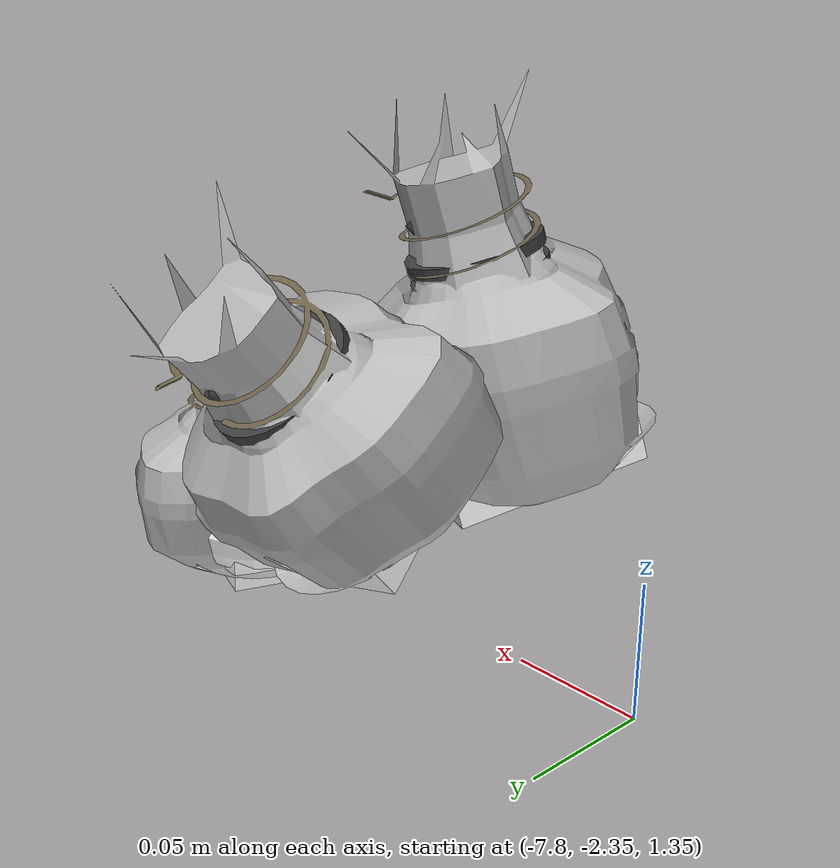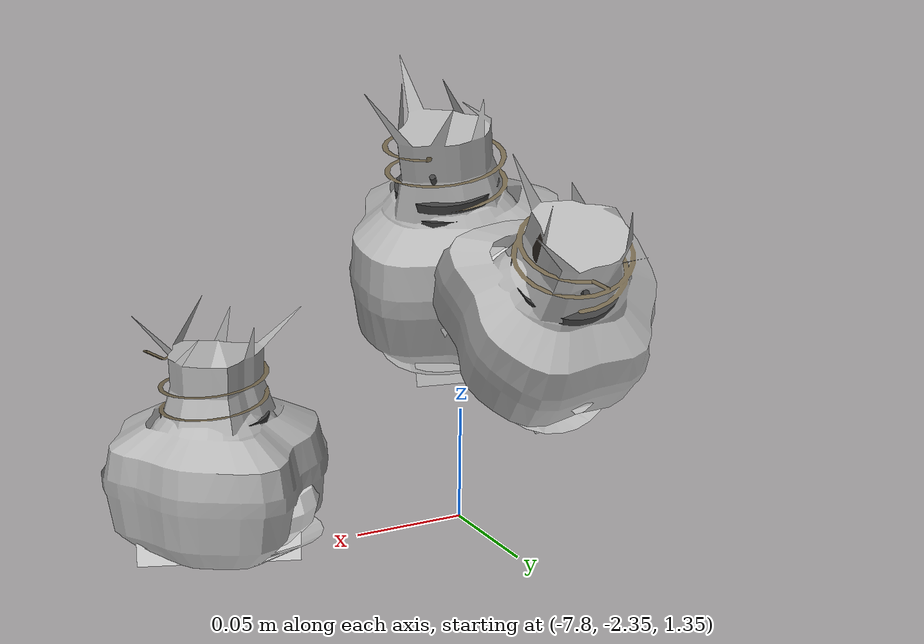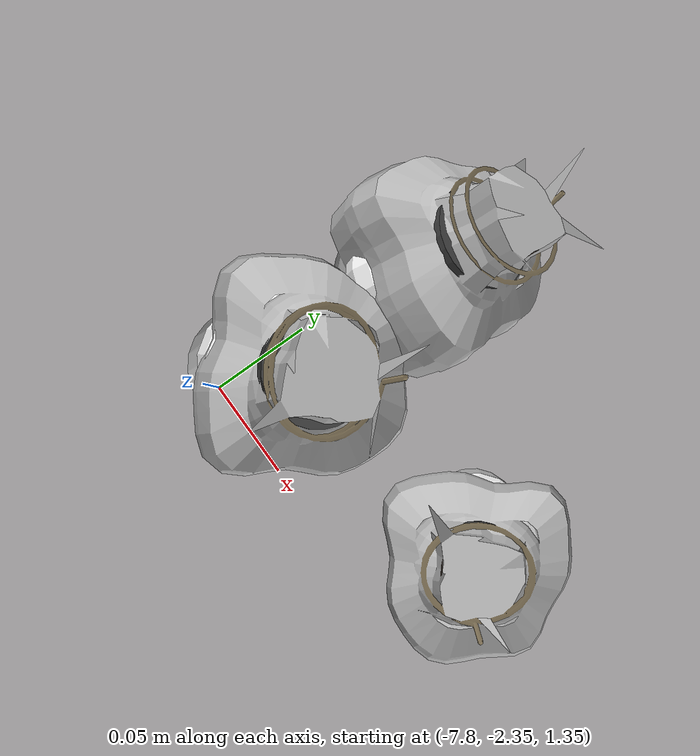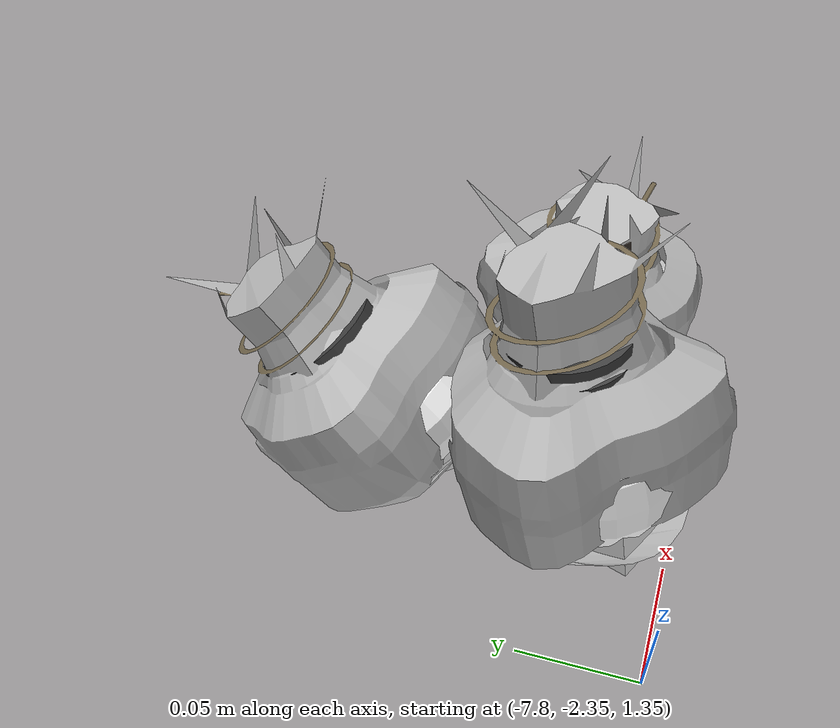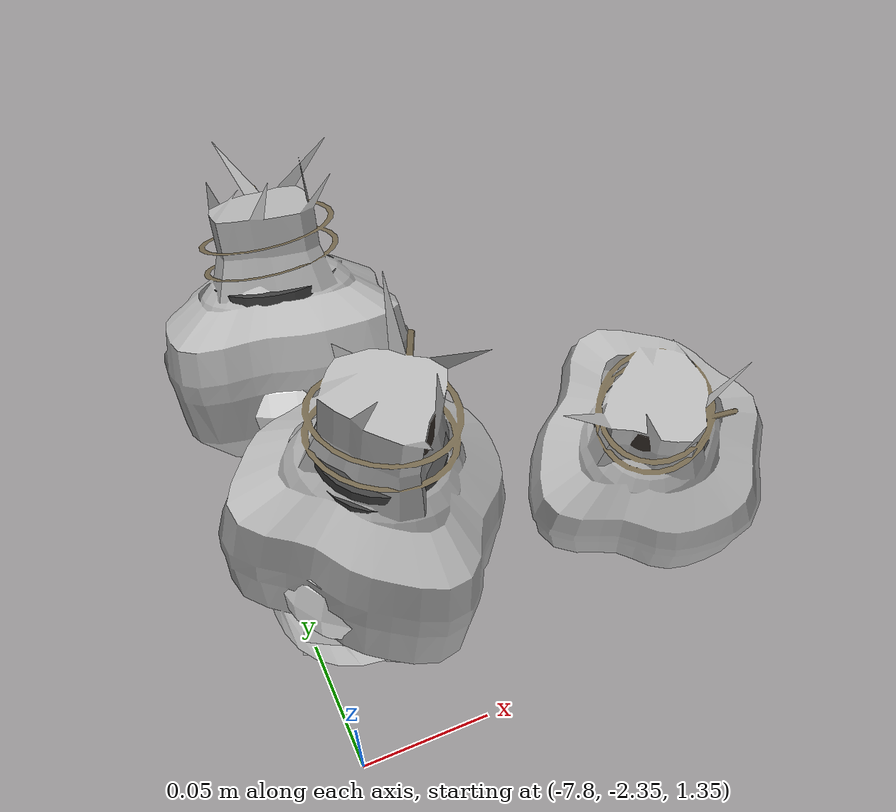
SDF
<sdf version="1.11">
 <world name="peach_orchard">
  <model name="ground">
   <static>true</static>
   <link name="link">
    <visual name="soil">
     <geometry><plane><normal>0 0 1</normal><size>32 22</size></plane></geometry>
     <material>
      <ambient>1 1 1 1</ambient>
      <diffuse>1 1 1 1</diffuse>
      <specular>0.1 0.1 0.1 1</specular>
      <pbr>
       <metal>
        <albedo_map>textures/soil_albedo.png</albedo_map>
        <normal_map type="tangent">textures/soil_normal.png</normal_map>
        <roughness>0.95</roughness>
        <metalness>0</metalness>
       </metal>
      </pbr>
     </material>
    </visual>
    <collision name="c_soil">
     <geometry><plane><normal>0 0 1</normal><size>32 22</size></plane></geometry>
    </collision>
   </link>
  </model>
  <model name="peach_tree_r0_t2_00">
   <pose>-7.66622 -2.29816 1.38107 0 0.0049836 -0.712758</pose>
   <static>true</static>
   <link name="bag">
    <visual name="bag_mesh">
     <pose>0 0 0.0387221 0 0 -0</pose>
     <geometry>
      <mesh><uri>model://peach_sim/meshes/bagged_peach.glb</uri><scale>1.05218 1.2114 0.880048</scale></mesh>
     </geometry>
    </visual>
    <visual name="body">
     <pose>0 0 0.0207221 0 0 0</pose>
     <geometry><ellipsoid><radii>0.0394566 0.0314963 0.0223799</radii></ellipsoid></geometry>
     <material>
      <ambient>1 1 1 1</ambient>
      <diffuse>1 1 1 1</diffuse>
      <specular>0.1 0.1 0.1 1</specular>
      <pbr>
       <metal>
        <albedo_map>textures/paper_bag_albedo.png</albedo_map>
        <normal_map type="tangent">textures/paper_bag_normal.png</normal_map>
        <roughness>0.72</roughness>
        <metalness>0</metalness>
       </metal>
      </pbr>
     </material>
    </visual>
    <visual name="bottom_fold">
     <pose>0 0 0.012 0 0 0.35</pose>
     <geometry><box><size>0.0611578 0.0362208 0.022</size></box></geometry>
     <material>
      <ambient>1 1 1 1</ambient>
      <diffuse>1 1 1 1</diffuse>
      <specular>0.1 0.1 0.1 1</specular>
      <pbr>
       <metal>
        <albedo_map>textures/paper_bag_albedo.png</albedo_map>
        <normal_map type="tangent">textures/paper_bag_normal.png</normal_map>
        <roughness>0.8</roughness>
        <metalness>0</metalness>
       </metal>
      </pbr>
     </material>
    </visual>
    <visual name="fruit">
     <pose>0 0 0.0191659 0 0 0</pose>
     <geometry><sphere><radius>0.0261725</radius></sphere></geometry>
     <material>
      <ambient>1 1 1 1</ambient>
      <diffuse>1 1 1 1</diffuse>
      <specular>0.1 0.1 0.1 1</specular>
      <pbr>
       <metal>
        <albedo_map>textures/fruit_skin_albedo.png</albedo_map>
        <normal_map type="tangent">textures/fruit_skin_normal.png</normal_map>
        <roughness>0.55</roughness>
        <metalness>0</metalness>
       </metal>
      </pbr>
     </material>
    </visual>
    <visual name="neck">
     <pose>0 0 0.0504442 0 0 0</pose>
     <geometry><cylinder><radius>0.013</radius><length>0.018</length></cylinder></geometry>
     <material>
      <ambient>1 1 1 1</ambient>
      <diffuse>1 1 1 1</diffuse>
      <specular>0.1 0.1 0.1 1</specular>
      <pbr>
       <metal>
        <albedo_map>textures/paper_bag_albedo.png</albedo_map>
        <normal_map type="tangent">textures/paper_bag_normal.png</normal_map>
        <roughness>0.75</roughness>
        <metalness>0</metalness>
       </metal>
      </pbr>
     </material>
    </visual>
    <visual name="gather">
     <pose>0 0 0.0314442 0 0 0</pose>
     <geometry><cylinder><radius>0.019</radius><length>0.02</length></cylinder></geometry>
     <material>
      <ambient>1 1 1 1</ambient>
      <diffuse>1 1 1 1</diffuse>
      <specular>0.1 0.1 0.1 1</specular>
      <pbr>
       <metal>
        <albedo_map>textures/paper_bag_albedo.png</albedo_map>
        <normal_map type="tangent">textures/paper_bag_normal.png</normal_map>
        <roughness>0.8</roughness>
        <metalness>0</metalness>
       </metal>
      </pbr>
     </material>
    </visual>
    <visual name="inner_paper">
     <pose>0 0 0.0554442 0 0 0</pose>
     <geometry><cylinder><radius>0.01</radius><length>0.008</length></cylinder></geometry>
     <material>
      <ambient>0.180392 0.14902 0.133333 1</ambient>
      <diffuse>0.180392 0.14902 0.133333 1</diffuse>
      <specular>0.1 0.1 0.1 1</specular>
     </material>
    </visual>
    <visual name="wire_0">
     <pose>0 0 0.0454442 0 0 0</pose>
     <geometry><cylinder><radius>0.0205</radius><length>0.0035</length></cylinder></geometry>
     <material>
      <ambient>0.25 0.25 0.25 1</ambient>
      <diffuse>0.25 0.25 0.25 1</diffuse>
      <specular>0.1 0.1 0.1 1</specular>
     </material>
    </visual>
    <visual name="wire_1">
     <pose>0 0 0.0524442 0 0 0</pose>
     <geometry><cylinder><radius>0.0205</radius><length>0.0035</length></cylinder></geometry>
     <material>
      <ambient>0.25 0.25 0.25 1</ambient>
      <diffuse>0.25 0.25 0.25 1</diffuse>
      <specular>0.1 0.1 0.1 1</specular>
     </material>
    </visual>
    <visual name="wire_tail">
     <pose>0.01 0 0.0534442 0 0.521618 0</pose>
     <geometry><cylinder><radius>0.0012</radius><length>0.026</length></cylinder></geometry>
     <material>
      <ambient>0.25 0.25 0.25 1</ambient>
      <diffuse>0.25 0.25 0.25 1</diffuse>
      <specular>0.1 0.1 0.1 1</specular>
     </material>
    </visual>
    <collision name="c_body">
     <pose>0 0 0.0207221 0 0 0</pose>
     <geometry><cylinder><radius>0.0394566</radius><length>0.0414442</length></cylinder></geometry>
    </collision>
   </link>
  </model>
  <model name="peach_tree_r0_t2_05">
   <pose>-7.78 -2.31613 1.44108 0 0.266349 0.781894</pose>
   <static>true</static>
   <link name="bag">
    <visual name="bag_mesh">
     <pose>0 0 0.0489355 0 0 0</pose>
     <geometry>
      <mesh><uri>model://peach_sim/meshes/bagged_peach.glb</uri><scale>1.03079 1.24562 1.11217</scale></mesh>
     </geometry>
    </visual>
    <visual name="body">
     <pose>0 0 0.0309355 0 0 0</pose>
     <geometry><ellipsoid><radii>0.0386547 0.032386 0.0334104</radii></ellipsoid></geometry>
     <material>
      <ambient>1 1 1 1</ambient>
      <diffuse>1 1 1 1</diffuse>
      <specular>0.1 0.1 0.1 1</specular>
      <pbr>
       <metal>
        <albedo_map>textures/paper_bag_albedo.png</albedo_map>
        <normal_map type="tangent">textures/paper_bag_normal.png</normal_map>
        <roughness>0.72</roughness>
        <metalness>0</metalness>
       </metal>
      </pbr>
     </material>
    </visual>
    <visual name="bottom_fold">
     <pose>0 0 0.012 0 0 0.35</pose>
     <geometry><box><size>0.0599148 0.0372439 0.022</size></box></geometry>
     <material>
      <ambient>1 1 1 1</ambient>
      <diffuse>1 1 1 1</diffuse>
      <specular>0.1 0.1 0.1 1</specular>
      <pbr>
       <metal>
        <albedo_map>textures/paper_bag_albedo.png</albedo_map>
        <normal_map type="tangent">textures/paper_bag_normal.png</normal_map>
        <roughness>0.8</roughness>
        <metalness>0</metalness>
       </metal>
      </pbr>
     </material>
    </visual>
    <visual name="fruit">
     <pose>0 0 0.0186197 0 0 0</pose>
     <geometry><sphere><radius>0.0256045</radius></sphere></geometry>
     <material>
      <ambient>1 1 1 1</ambient>
      <diffuse>1 1 1 1</diffuse>
      <specular>0.1 0.1 0.1 1</specular>
      <pbr>
       <metal>
        <albedo_map>textures/fruit_skin_albedo.png</albedo_map>
        <normal_map type="tangent">textures/fruit_skin_normal.png</normal_map>
        <roughness>0.55</roughness>
        <metalness>0</metalness>
       </metal>
      </pbr>
     </material>
    </visual>
    <visual name="neck">
     <pose>0 0 0.070871 0 0 0</pose>
     <geometry><cylinder><radius>0.013</radius><length>0.018</length></cylinder></geometry>
     <material>
      <ambient>1 1 1 1</ambient>
      <diffuse>1 1 1 1</diffuse>
      <specular>0.1 0.1 0.1 1</specular>
      <pbr>
       <metal>
        <albedo_map>textures/paper_bag_albedo.png</albedo_map>
        <normal_map type="tangent">textures/paper_bag_normal.png</normal_map>
        <roughness>0.75</roughness>
        <metalness>0</metalness>
       </metal>
      </pbr>
     </material>
    </visual>
    <visual name="gather">
     <pose>0 0 0.051871 0 0 0</pose>
     <geometry><cylinder><radius>0.019</radius><length>0.02</length></cylinder></geometry>
     <material>
      <ambient>1 1 1 1</ambient>
      <diffuse>1 1 1 1</diffuse>
      <specular>0.1 0.1 0.1 1</specular>
      <pbr>
       <metal>
        <albedo_map>textures/paper_bag_albedo.png</albedo_map>
        <normal_map type="tangent">textures/paper_bag_normal.png</normal_map>
        <roughness>0.8</roughness>
        <metalness>0</metalness>
       </metal>
      </pbr>
     </material>
    </visual>
    <visual name="inner_paper">
     <pose>0 0 0.075871 0 0 0</pose>
     <geometry><cylinder><radius>0.01</radius><length>0.008</length></cylinder></geometry>
     <material>
      <ambient>0.180392 0.14902 0.133333 1</ambient>
      <diffuse>0.180392 0.14902 0.133333 1</diffuse>
      <specular>0.1 0.1 0.1 1</specular>
     </material>
    </visual>
    <visual name="wire_0">
     <pose>0 0 0.065871 0 0 0</pose>
     <geometry><cylinder><radius>0.0205</radius><length>0.0035</length></cylinder></geometry>
     <material>
      <ambient>0.25 0.25 0.25 1</ambient>
      <diffuse>0.25 0.25 0.25 1</diffuse>
      <specular>0.1 0.1 0.1 1</specular>
     </material>
    </visual>
    <visual name="wire_1">
     <pose>0 0 0.072871 0 0 0</pose>
     <geometry><cylinder><radius>0.0205</radius><length>0.0035</length></cylinder></geometry>
     <material>
      <ambient>0.25 0.25 0.25 1</ambient>
      <diffuse>0.25 0.25 0.25 1</diffuse>
      <specular>0.1 0.1 0.1 1</specular>
     </material>
    </visual>
    <visual name="wire_tail">
     <pose>0.01 0 0.073871 0 0.521618 0</pose>
     <geometry><cylinder><radius>0.0012</radius><length>0.026</length></cylinder></geometry>
     <material>
      <ambient>0.25 0.25 0.25 1</ambient>
      <diffuse>0.25 0.25 0.25 1</diffuse>
      <specular>0.1 0.1 0.1 1</specular>
     </material>
    </visual>
    <collision name="c_body">
     <pose>0 0 0.0309355 0 0 0</pose>
     <geometry><cylinder><radius>0.0386547</radius><length>0.061871</length></cylinder></geometry>
    </collision>
   </link>
  </model>
  <model name="peach_tree_r0_t2_06">
   <pose>-7.78 -2.25968 1.45 0 0.684415 1.37365</pose>
   <static>true</static>
   <link name="bag">
    <visual name="bag_mesh">
     <pose>0 0 0.0402428 0 0 0</pose>
     <geometry>
      <mesh><uri>model://peach_sim/meshes/bagged_peach.glb</uri><scale>0.967143 1.15248 0.914609</scale></mesh>
     </geometry>
    </visual>
    <visual name="body">
     <pose>0 0 0.0222428 0 0 0</pose>
     <geometry><ellipsoid><radii>0.0362679 0.0299644 0.0240222</radii></ellipsoid></geometry>
     <material>
      <ambient>1 1 1 1</ambient>
      <diffuse>1 1 1 1</diffuse>
      <specular>0.1 0.1 0.1 1</specular>
      <pbr>
       <metal>
        <albedo_map>textures/paper_bag_albedo.png</albedo_map>
        <normal_map type="tangent">textures/paper_bag_normal.png</normal_map>
        <roughness>0.72</roughness>
        <metalness>0</metalness>
       </metal>
      </pbr>
     </material>
    </visual>
    <visual name="bottom_fold">
     <pose>0 0 0.012 0 0 0.35</pose>
     <geometry><box><size>0.0562152 0.034459 0.022</size></box></geometry>
     <material>
      <ambient>1 1 1 1</ambient>
      <diffuse>1 1 1 1</diffuse>
      <specular>0.1 0.1 0.1 1</specular>
      <pbr>
       <metal>
        <albedo_map>textures/paper_bag_albedo.png</albedo_map>
        <normal_map type="tangent">textures/paper_bag_normal.png</normal_map>
        <roughness>0.8</roughness>
        <metalness>0</metalness>
       </metal>
      </pbr>
     </material>
    </visual>
    <visual name="fruit">
     <pose>0 0 0.0171324 0 0 0</pose>
     <geometry><sphere><radius>0.0240577</radius></sphere></geometry>
     <material>
      <ambient>1 1 1 1</ambient>
      <diffuse>1 1 1 1</diffuse>
      <specular>0.1 0.1 0.1 1</specular>
      <pbr>
       <metal>
        <albedo_map>textures/fruit_skin_albedo.png</albedo_map>
        <normal_map type="tangent">textures/fruit_skin_normal.png</normal_map>
        <roughness>0.55</roughness>
        <metalness>0</metalness>
       </metal>
      </pbr>
     </material>
    </visual>
    <visual name="neck">
     <pose>0 0 0.0534856 0 0 0</pose>
     <geometry><cylinder><radius>0.013</radius><length>0.018</length></cylinder></geometry>
     <material>
      <ambient>1 1 1 1</ambient>
      <diffuse>1 1 1 1</diffuse>
      <specular>0.1 0.1 0.1 1</specular>
      <pbr>
       <metal>
        <albedo_map>textures/paper_bag_albedo.png</albedo_map>
        <normal_map type="tangent">textures/paper_bag_normal.png</normal_map>
        <roughness>0.75</roughness>
        <metalness>0</metalness>
       </metal>
      </pbr>
     </material>
    </visual>
    <visual name="gather">
     <pose>0 0 0.0344856 0 0 0</pose>
     <geometry><cylinder><radius>0.019</radius><length>0.02</length></cylinder></geometry>
     <material>
      <ambient>1 1 1 1</ambient>
      <diffuse>1 1 1 1</diffuse>
      <specular>0.1 0.1 0.1 1</specular>
      <pbr>
       <metal>
        <albedo_map>textures/paper_bag_albedo.png</albedo_map>
        <normal_map type="tangent">textures/paper_bag_normal.png</normal_map>
        <roughness>0.8</roughness>
        <metalness>0</metalness>
       </metal>
      </pbr>
     </material>
    </visual>
    <visual name="inner_paper">
     <pose>0 0 0.0584856 0 0 0</pose>
     <geometry><cylinder><radius>0.01</radius><length>0.008</length></cylinder></geometry>
     <material>
      <ambient>0.180392 0.14902 0.133333 1</ambient>
      <diffuse>0.180392 0.14902 0.133333 1</diffuse>
      <specular>0.1 0.1 0.1 1</specular>
     </material>
    </visual>
    <visual name="wire_0">
     <pose>0 0 0.0484856 0 0 0</pose>
     <geometry><cylinder><radius>0.0205</radius><length>0.0035</length></cylinder></geometry>
     <material>
      <ambient>0.25 0.25 0.25 1</ambient>
      <diffuse>0.25 0.25 0.25 1</diffuse>
      <specular>0.1 0.1 0.1 1</specular>
     </material>
    </visual>
    <visual name="wire_1">
     <pose>0 0 0.0554856 0 0 0</pose>
     <geometry><cylinder><radius>0.0205</radius><length>0.0035</length></cylinder></geometry>
     <material>
      <ambient>0.25 0.25 0.25 1</ambient>
      <diffuse>0.25 0.25 0.25 1</diffuse>
      <specular>0.1 0.1 0.1 1</specular>
     </material>
    </visual>
    <visual name="wire_tail">
     <pose>0.01 0 0.0564856 0 0.521618 0</pose>
     <geometry><cylinder><radius>0.0012</radius><length>0.026</length></cylinder></geometry>
     <material>
      <ambient>0.25 0.25 0.25 1</ambient>
      <diffuse>0.25 0.25 0.25 1</diffuse>
      <specular>0.1 0.1 0.1 1</specular>
     </material>
    </visual>
    <collision name="c_body">
     <pose>0 0 0.0222428 0 0 0</pose>
     <geometry><cylinder><radius>0.0362679</radius><length>0.0444856</length></cylinder></geometry>
    </collision>
   </link>
  </model>
 </world>
</sdf>
